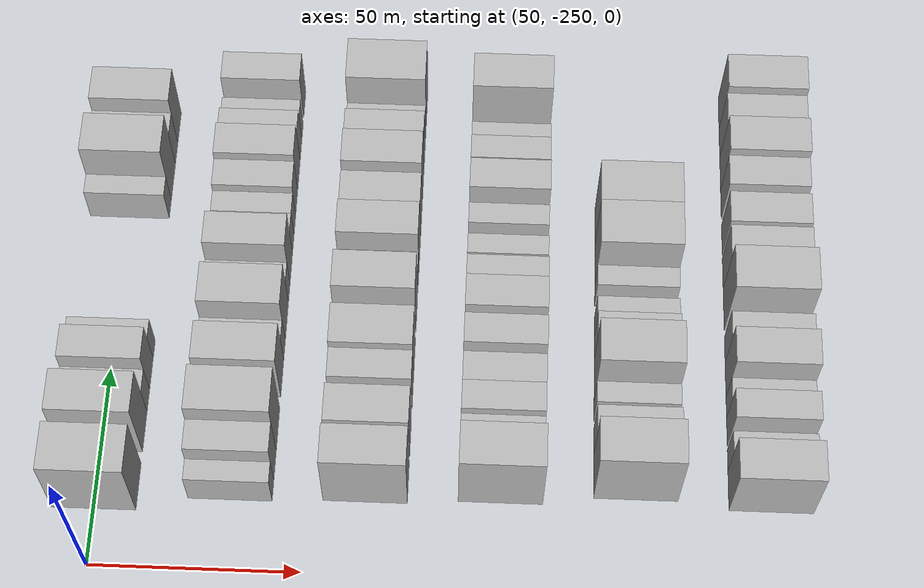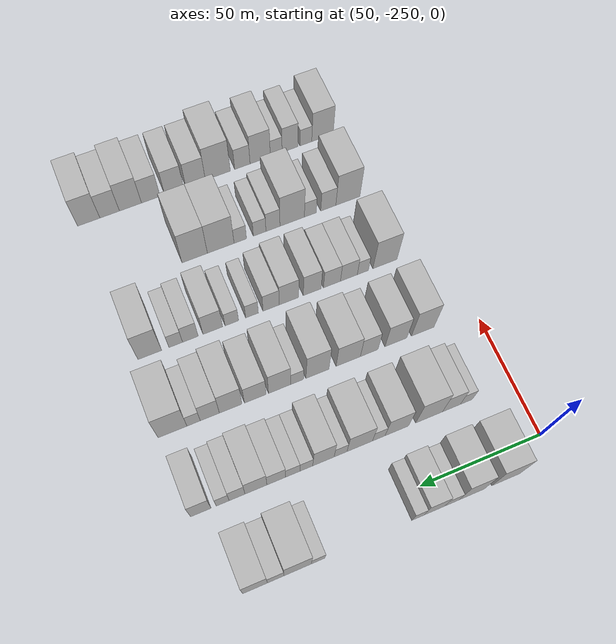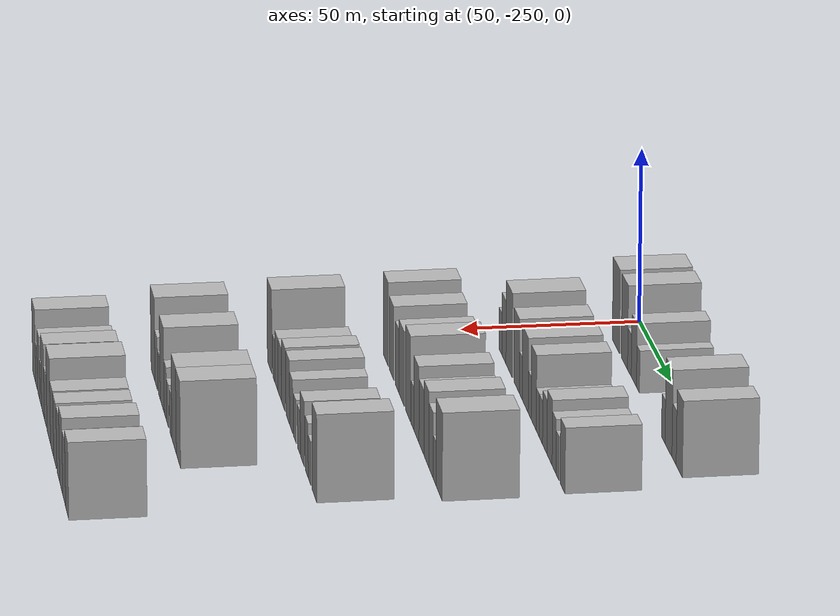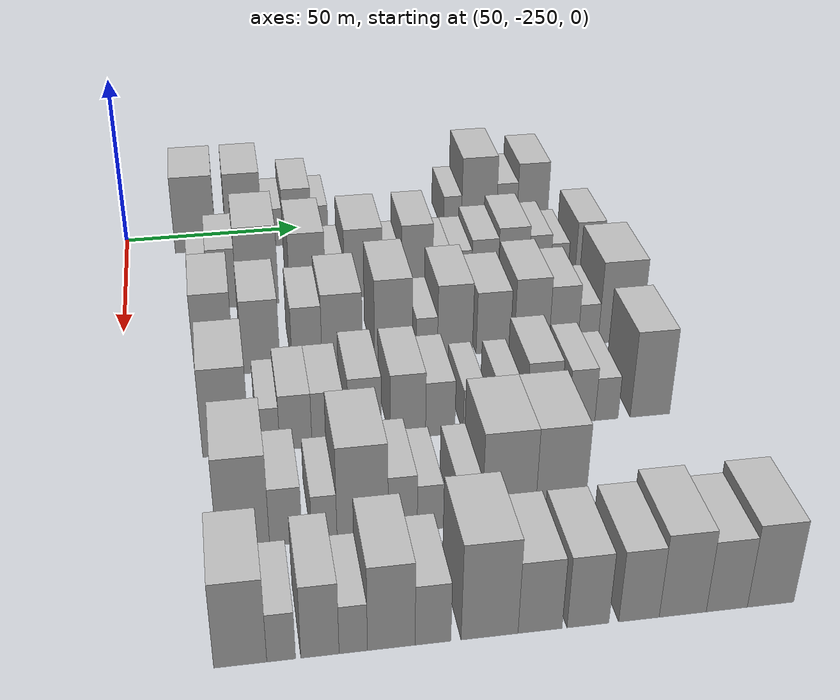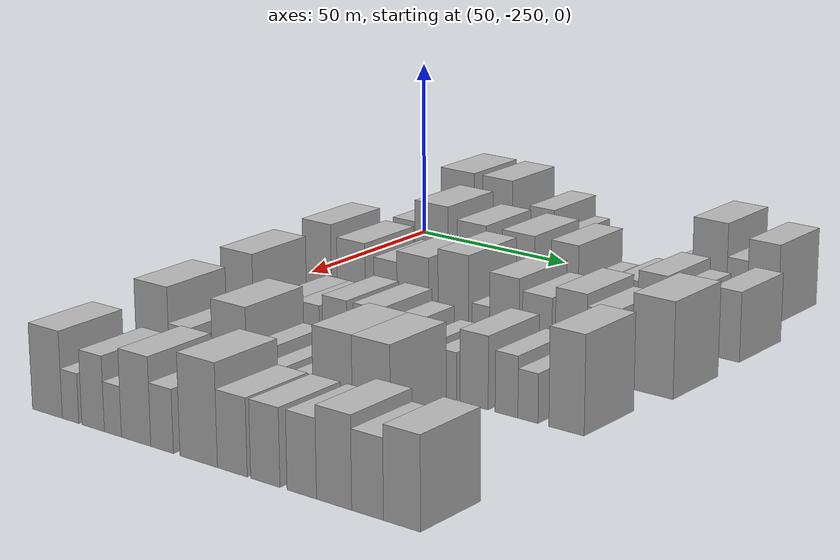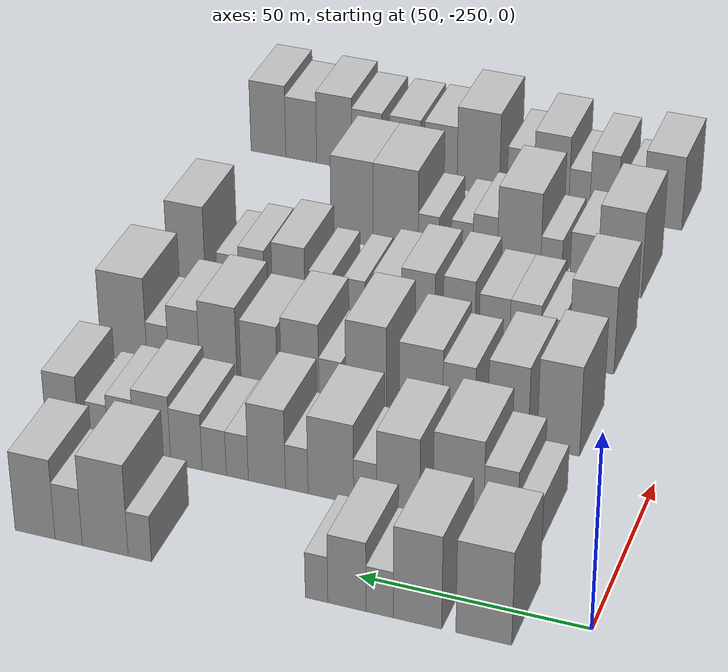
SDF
<sdf version="1.6">
 <world name="default">
  <model name="building_34">
   <static>1</static>
   <pose>50.0000 -230.2196 0 0.000000 0.000000 0.000000</pose>
   <link name="link">
    <pose>0 0 12.00 0 0 0</pose>
    <collision name="collision"><geometry><box><size>20.0000 11.7965 24.0000</size></box></geometry></collision>
    <visual name="visual">
     <cast_shadows>0</cast_shadows>
     <geometry><box><size>20.0000 11.7965 24.0000</size></box></geometry>
     <material>
      <script>
       <uri>model://HANNAS_wall/materials/scripts</uri>
       <uri>model://HANNAS_wall/materials/textures</uri>
       <name>vrc/HANNAS_wall</name>
      </script>
     </material>
    </visual>
   </link>
  </model>
  <model name="building_35">
   <static>1</static>
   <pose>50.0000 -216.1596 0 0.000000 0.000000 0.000000</pose>
   <link name="link">
    <pose>0 0 12.00 0 0 0</pose>
    <collision name="collision"><geometry><box><size>20.0000 10.3236 24.0000</size></box></geometry></collision>
    <visual name="visual">
     <cast_shadows>0</cast_shadows>
     <geometry><box><size>20.0000 10.3236 24.0000</size></box></geometry>
     <material>
      <script>
       <uri>model://HANNAS_wall/materials/scripts</uri>
       <uri>model://HANNAS_wall/materials/textures</uri>
       <name>vrc/HANNAS_wall</name>
      </script>
     </material>
    </visual>
   </link>
  </model>
  <model name="building_36">
   <static>1</static>
   <pose>50.0000 -208.0337 0 0.000000 0.000000 0.000000</pose>
   <link name="link">
    <pose>0 0 6.00 0 0 0</pose>
    <collision name="collision"><geometry><box><size>20.0000 5.9284 12.0000</size></box></geometry></collision>
    <visual name="visual">
     <cast_shadows>0</cast_shadows>
     <geometry><box><size>20.0000 5.9284 12.0000</size></box></geometry>
     <material>
      <script>
       <uri>model://HANNAS_wall/materials/scripts</uri>
       <uri>model://HANNAS_wall/materials/textures</uri>
       <name>vrc/HANNAS_wall</name>
      </script>
     </material>
    </visual>
   </link>
  </model>
  <model name="building_37">
   <static>1</static>
   <pose>50.0000 -200.9124 0 0.000000 0.000000 0.000000</pose>
   <link name="link">
    <pose>0 0 9.00 0 0 0</pose>
    <collision name="collision"><geometry><box><size>20.0000 8.3141 18.0000</size></box></geometry></collision>
    <visual name="visual">
     <cast_shadows>0</cast_shadows>
     <geometry><box><size>20.0000 8.3141 18.0000</size></box></geometry>
     <material>
      <script>
       <uri>model://HANNAS_wall/materials/scripts</uri>
       <uri>model://HANNAS_wall/materials/textures</uri>
       <name>vrc/HANNAS_wall</name>
      </script>
     </material>
    </visual>
   </link>
  </model>
  <model name="building_38">
   <static>1</static>
   <pose>50.0000 -194.2948 0 0.000000 0.000000 0.000000</pose>
   <link name="link">
    <pose>0 0 6.00 0 0 0</pose>
    <collision name="collision"><geometry><box><size>20.0000 4.9212 12.0000</size></box></geometry></collision>
    <visual name="visual">
     <cast_shadows>0</cast_shadows>
     <geometry><box><size>20.0000 4.9212 12.0000</size></box></geometry>
     <material>
      <script>
       <uri>model://HANNAS_wall/materials/scripts</uri>
       <uri>model://HANNAS_wall/materials/textures</uri>
       <name>vrc/HANNAS_wall</name>
      </script>
     </material>
    </visual>
   </link>
  </model>
  <model name="building_39">
   <static>1</static>
   <pose>50.0000 -154.8706 0 0.000000 0.000000 0.000000</pose>
   <link name="link">
    <pose>0 0 6.00 0 0 0</pose>
    <collision name="collision"><geometry><box><size>20.0000 5.3091 12.0000</size></box></geometry></collision>
    <visual name="visual">
     <cast_shadows>0</cast_shadows>
     <geometry><box><size>20.0000 5.3091 12.0000</size></box></geometry>
     <material>
      <script>
       <uri>model://HANNAS_wall/materials/scripts</uri>
       <uri>model://HANNAS_wall/materials/textures</uri>
       <name>vrc/HANNAS_wall</name>
      </script>
     </material>
    </visual>
   </link>
  </model>
  <model name="building_40">
   <static>1</static>
   <pose>50.0000 -146.9574 0 0.000000 0.000000 0.000000</pose>
   <link name="link">
    <pose>0 0 12.00 0 0 0</pose>
    <collision name="collision"><geometry><box><size>20.0000 10.5174 24.0000</size></box></geometry></collision>
    <visual name="visual">
     <cast_shadows>0</cast_shadows>
     <geometry><box><size>20.0000 10.5174 24.0000</size></box></geometry>
     <material>
      <script>
       <uri>model://HANNAS_wall/materials/scripts</uri>
       <uri>model://HANNAS_wall/materials/textures</uri>
       <name>vrc/HANNAS_wall</name>
      </script>
     </material>
    </visual>
   </link>
  </model>
  <model name="building_41">
   <static>1</static>
   <pose>50.0000 -138.5620 0 0.000000 0.000000 0.000000</pose>
   <link name="link">
    <pose>0 0 7.50 0 0 0</pose>
    <collision name="collision"><geometry><box><size>20.0000 6.2733 15.0000</size></box></geometry></collision>
    <visual name="visual">
     <cast_shadows>0</cast_shadows>
     <geometry><box><size>20.0000 6.2733 15.0000</size></box></geometry>
     <material>
      <script>
       <uri>model://HANNAS_wall/materials/scripts</uri>
       <uri>model://HANNAS_wall/materials/textures</uri>
       <name>vrc/HANNAS_wall</name>
      </script>
     </material>
    </visual>
   </link>
  </model>
  <model name="building_42">
   <static>1</static>
   <pose>50.0000 -130.7770 0 0.000000 0.000000 0.000000</pose>
   <link name="link">
    <pose>0 0 10.50 0 0 0</pose>
    <collision name="collision"><geometry><box><size>20.0000 9.2967 21.0000</size></box></geometry></collision>
    <visual name="visual">
     <cast_shadows>0</cast_shadows>
     <geometry><box><size>20.0000 9.2967 21.0000</size></box></geometry>
     <material>
      <script>
       <uri>model://HANNAS_wall/materials/scripts</uri>
       <uri>model://HANNAS_wall/materials/textures</uri>
       <name>vrc/HANNAS_wall</name>
      </script>
     </material>
    </visual>
   </link>
  </model>
  <model name="building_148">
   <static>1</static>
   <pose>82.0000 -230.0540 0 0.000000 0.000000 0.000000</pose>
   <link name="link">
    <pose>0 0 6.00 0 0 0</pose>
    <collision name="collision"><geometry><box><size>20.0000 5.1873 12.0000</size></box></geometry></collision>
    <visual name="visual">
     <cast_shadows>0</cast_shadows>
     <geometry><box><size>20.0000 5.1873 12.0000</size></box></geometry>
     <material>
      <script>
       <uri>model://HANNAS_wall/materials/scripts</uri>
       <uri>model://HANNAS_wall/materials/textures</uri>
       <name>vrc/HANNAS_wall</name>
      </script>
     </material>
    </visual>
   </link>
  </model>
  <model name="building_149">
   <static>1</static>
   <pose>82.0000 -223.7121 0 0.000000 0.000000 0.000000</pose>
   <link name="link">
    <pose>0 0 9.00 0 0 0</pose>
    <collision name="collision"><geometry><box><size>20.0000 7.4964 18.0000</size></box></geometry></collision>
    <visual name="visual">
     <cast_shadows>0</cast_shadows>
     <geometry><box><size>20.0000 7.4964 18.0000</size></box></geometry>
     <material>
      <script>
       <uri>model://HANNAS_wall/materials/scripts</uri>
       <uri>model://HANNAS_wall/materials/textures</uri>
       <name>vrc/HANNAS_wall</name>
      </script>
     </material>
    </visual>
   </link>
  </model>
  <model name="building_150">
   <static>1</static>
   <pose>82.0000 -214.3431 0 0.000000 0.000000 0.000000</pose>
   <link name="link">
    <pose>0 0 12.00 0 0 0</pose>
    <collision name="collision"><geometry><box><size>20.0000 11.2416 24.0000</size></box></geometry></collision>
    <visual name="visual">
     <cast_shadows>0</cast_shadows>
     <geometry><box><size>20.0000 11.2416 24.0000</size></box></geometry>
     <material>
      <script>
       <uri>model://HANNAS_wall/materials/scripts</uri>
       <uri>model://HANNAS_wall/materials/textures</uri>
       <name>vrc/HANNAS_wall</name>
      </script>
     </material>
    </visual>
   </link>
  </model>
  <model name="building_151">
   <static>1</static>
   <pose>82.0000 -200.8502 0 0.000000 0.000000 0.000000</pose>
   <link name="link">
    <pose>0 0 10.50 0 0 0</pose>
    <collision name="collision"><geometry><box><size>20.0000 9.7442 21.0000</size></box></geometry></collision>
    <visual name="visual">
     <cast_shadows>0</cast_shadows>
     <geometry><box><size>20.0000 9.7442 21.0000</size></box></geometry>
     <material>
      <script>
       <uri>model://HANNAS_wall/materials/scripts</uri>
       <uri>model://HANNAS_wall/materials/textures</uri>
       <name>vrc/HANNAS_wall</name>
      </script>
     </material>
    </visual>
   </link>
  </model>
  <model name="building_152">
   <static>1</static>
   <pose>82.0000 -193.3822 0 0.000000 0.000000 0.000000</pose>
   <link name="link">
    <pose>0 0 6.00 0 0 0</pose>
    <collision name="collision"><geometry><box><size>20.0000 5.1919 12.0000</size></box></geometry></collision>
    <visual name="visual">
     <cast_shadows>0</cast_shadows>
     <geometry><box><size>20.0000 5.1919 12.0000</size></box></geometry>
     <material>
      <script>
       <uri>model://HANNAS_wall/materials/scripts</uri>
       <uri>model://HANNAS_wall/materials/textures</uri>
       <name>vrc/HANNAS_wall</name>
      </script>
     </material>
    </visual>
   </link>
  </model>
  <model name="building_153">
   <static>1</static>
   <pose>82.0000 -185.5626 0 0.000000 0.000000 0.000000</pose>
   <link name="link">
    <pose>0 0 10.50 0 0 0</pose>
    <collision name="collision"><geometry><box><size>20.0000 10.4474 21.0000</size></box></geometry></collision>
    <visual name="visual">
     <cast_shadows>0</cast_shadows>
     <geometry><box><size>20.0000 10.4474 21.0000</size></box></geometry>
     <material>
      <script>
       <uri>model://HANNAS_wall/materials/scripts</uri>
       <uri>model://HANNAS_wall/materials/textures</uri>
       <name>vrc/HANNAS_wall</name>
      </script>
     </material>
    </visual>
   </link>
  </model>
  <model name="building_154">
   <static>1</static>
   <pose>82.0000 -177.7225 0 0.000000 0.000000 0.000000</pose>
   <link name="link">
    <pose>0 0 6.00 0 0 0</pose>
    <collision name="collision"><geometry><box><size>20.0000 5.2328 12.0000</size></box></geometry></collision>
    <visual name="visual">
     <cast_shadows>0</cast_shadows>
     <geometry><box><size>20.0000 5.2328 12.0000</size></box></geometry>
     <material>
      <script>
       <uri>model://HANNAS_wall/materials/scripts</uri>
       <uri>model://HANNAS_wall/materials/textures</uri>
       <name>vrc/HANNAS_wall</name>
      </script>
     </material>
    </visual>
   </link>
  </model>
  <model name="building_155">
   <static>1</static>
   <pose>82.0000 -170.7896 0 0.000000 0.000000 0.000000</pose>
   <link name="link">
    <pose>0 0 10.50 0 0 0</pose>
    <collision name="collision"><geometry><box><size>20.0000 8.6328 21.0000</size></box></geometry></collision>
    <visual name="visual">
     <cast_shadows>0</cast_shadows>
     <geometry><box><size>20.0000 8.6328 21.0000</size></box></geometry>
     <material>
      <script>
       <uri>model://HANNAS_wall/materials/scripts</uri>
       <uri>model://HANNAS_wall/materials/textures</uri>
       <name>vrc/HANNAS_wall</name>
      </script>
     </material>
    </visual>
   </link>
  </model>
  <model name="building_156">
   <static>1</static>
   <pose>82.0000 -163.9092 0 0.000000 0.000000 0.000000</pose>
   <link name="link">
    <pose>0 0 6.00 0 0 0</pose>
    <collision name="collision"><geometry><box><size>20.0000 5.1281 12.0000</size></box></geometry></collision>
    <visual name="visual">
     <cast_shadows>0</cast_shadows>
     <geometry><box><size>20.0000 5.1281 12.0000</size></box></geometry>
     <material>
      <script>
       <uri>model://HANNAS_wall/materials/scripts</uri>
       <uri>model://HANNAS_wall/materials/textures</uri>
       <name>vrc/HANNAS_wall</name>
      </script>
     </material>
    </visual>
   </link>
  </model>
  <model name="building_157">
   <static>1</static>
   <pose>82.0000 -158.4961 0 0.000000 0.000000 0.000000</pose>
   <link name="link">
    <pose>0 0 6.00 0 0 0</pose>
    <collision name="collision"><geometry><box><size>20.0000 5.6981 12.0000</size></box></geometry></collision>
    <visual name="visual">
     <cast_shadows>0</cast_shadows>
     <geometry><box><size>20.0000 5.6981 12.0000</size></box></geometry>
     <material>
      <script>
       <uri>model://HANNAS_wall/materials/scripts</uri>
       <uri>model://HANNAS_wall/materials/textures</uri>
       <name>vrc/HANNAS_wall</name>
      </script>
     </material>
    </visual>
   </link>
  </model>
  <model name="building_158">
   <static>1</static>
   <pose>82.0000 -151.9312 0 0.000000 0.000000 0.000000</pose>
   <link name="link">
    <pose>0 0 7.50 0 0 0</pose>
    <collision name="collision"><geometry><box><size>20.0000 7.4318 15.0000</size></box></geometry></collision>
    <visual name="visual">
     <cast_shadows>0</cast_shadows>
     <geometry><box><size>20.0000 7.4318 15.0000</size></box></geometry>
     <material>
      <script>
       <uri>model://HANNAS_wall/materials/scripts</uri>
       <uri>model://HANNAS_wall/materials/textures</uri>
       <name>vrc/HANNAS_wall</name>
      </script>
     </material>
    </visual>
   </link>
  </model>
  <model name="building_159">
   <static>1</static>
   <pose>82.0000 -143.8930 0 0.000000 0.000000 0.000000</pose>
   <link name="link">
    <pose>0 0 9.00 0 0 0</pose>
    <collision name="collision"><geometry><box><size>20.0000 8.6445 18.0000</size></box></geometry></collision>
    <visual name="visual">
     <cast_shadows>0</cast_shadows>
     <geometry><box><size>20.0000 8.6445 18.0000</size></box></geometry>
     <material>
      <script>
       <uri>model://HANNAS_wall/materials/scripts</uri>
       <uri>model://HANNAS_wall/materials/textures</uri>
       <name>vrc/HANNAS_wall</name>
      </script>
     </material>
    </visual>
   </link>
  </model>
  <model name="building_160">
   <static>1</static>
   <pose>82.0000 -136.4608 0 0.000000 0.000000 0.000000</pose>
   <link name="link">
    <pose>0 0 7.50 0 0 0</pose>
    <collision name="collision"><geometry><box><size>20.0000 6.2200 15.0000</size></box></geometry></collision>
    <visual name="visual">
     <cast_shadows>0</cast_shadows>
     <geometry><box><size>20.0000 6.2200 15.0000</size></box></geometry>
     <material>
      <script>
       <uri>model://HANNAS_wall/materials/scripts</uri>
       <uri>model://HANNAS_wall/materials/textures</uri>
       <name>vrc/HANNAS_wall</name>
      </script>
     </material>
    </visual>
   </link>
  </model>
  <model name="building_161">
   <static>1</static>
   <pose>82.0000 -130.8291 0 0.000000 0.000000 0.000000</pose>
   <link name="link">
    <pose>0 0 6.00 0 0 0</pose>
    <collision name="collision"><geometry><box><size>20.0000 5.0434 12.0000</size></box></geometry></collision>
    <visual name="visual">
     <cast_shadows>0</cast_shadows>
     <geometry><box><size>20.0000 5.0434 12.0000</size></box></geometry>
     <material>
      <script>
       <uri>model://HANNAS_wall/materials/scripts</uri>
       <uri>model://HANNAS_wall/materials/textures</uri>
       <name>vrc/HANNAS_wall</name>
      </script>
     </material>
    </visual>
   </link>
  </model>
  <model name="building_162">
   <static>1</static>
   <pose>82.0000 -122.3464 0 0.000000 0.000000 0.000000</pose>
   <link name="link">
    <pose>0 0 9.00 0 0 0</pose>
    <collision name="collision"><geometry><box><size>20.0000 7.9219 18.0000</size></box></geometry></collision>
    <visual name="visual">
     <cast_shadows>0</cast_shadows>
     <geometry><box><size>20.0000 7.9219 18.0000</size></box></geometry>
     <material>
      <script>
       <uri>model://HANNAS_wall/materials/scripts</uri>
       <uri>model://HANNAS_wall/materials/textures</uri>
       <name>vrc/HANNAS_wall</name>
      </script>
     </material>
    </visual>
   </link>
  </model>
  <model name="building_275">
   <static>1</static>
   <pose>114.0000 -227.0773 0 0.000000 0.000000 0.000000</pose>
   <link name="link">
    <pose>0 0 12.00 0 0 0</pose>
    <collision name="collision"><geometry><box><size>20.0000 9.7716 24.0000</size></box></geometry></collision>
    <visual name="visual">
     <cast_shadows>0</cast_shadows>
     <geometry><box><size>20.0000 9.7716 24.0000</size></box></geometry>
     <material>
      <script>
       <uri>model://HANNAS_wall/materials/scripts</uri>
       <uri>model://HANNAS_wall/materials/textures</uri>
       <name>vrc/HANNAS_wall</name>
      </script>
     </material>
    </visual>
   </link>
  </model>
  <model name="building_276">
   <static>1</static>
   <pose>114.0000 -215.4870 0 0.000000 0.000000 0.000000</pose>
   <link name="link">
    <pose>0 0 10.50 0 0 0</pose>
    <collision name="collision"><geometry><box><size>20.0000 9.4090 21.0000</size></box></geometry></collision>
    <visual name="visual">
     <cast_shadows>0</cast_shadows>
     <geometry><box><size>20.0000 9.4090 21.0000</size></box></geometry>
     <material>
      <script>
       <uri>model://HANNAS_wall/materials/scripts</uri>
       <uri>model://HANNAS_wall/materials/textures</uri>
       <name>vrc/HANNAS_wall</name>
      </script>
     </material>
    </visual>
   </link>
  </model>
  <model name="building_277">
   <static>1</static>
   <pose>114.0000 -204.0106 0 0.000000 0.000000 0.000000</pose>
   <link name="link">
    <pose>0 0 9.00 0 0 0</pose>
    <collision name="collision"><geometry><box><size>20.0000 7.5439 18.0000</size></box></geometry></collision>
    <visual name="visual">
     <cast_shadows>0</cast_shadows>
     <geometry><box><size>20.0000 7.5439 18.0000</size></box></geometry>
     <material>
      <script>
       <uri>model://HANNAS_wall/materials/scripts</uri>
       <uri>model://HANNAS_wall/materials/textures</uri>
       <name>vrc/HANNAS_wall</name>
      </script>
     </material>
    </visual>
   </link>
  </model>
  <model name="building_278">
   <static>1</static>
   <pose>114.0000 -195.1094 0 0.000000 0.000000 0.000000</pose>
   <link name="link">
    <pose>0 0 10.50 0 0 0</pose>
    <collision name="collision"><geometry><box><size>20.0000 10.2586 21.0000</size></box></geometry></collision>
    <visual name="visual">
     <cast_shadows>0</cast_shadows>
     <geometry><box><size>20.0000 10.2586 21.0000</size></box></geometry>
     <material>
      <script>
       <uri>model://HANNAS_wall/materials/scripts</uri>
       <uri>model://HANNAS_wall/materials/textures</uri>
       <name>vrc/HANNAS_wall</name>
      </script>
     </material>
    </visual>
   </link>
  </model>
  <model name="building_279">
   <static>1</static>
   <pose>114.0000 -182.1503 0 0.000000 0.000000 0.000000</pose>
   <link name="link">
    <pose>0 0 12.00 0 0 0</pose>
    <collision name="collision"><geometry><box><size>20.0000 9.6596 24.0000</size></box></geometry></collision>
    <visual name="visual">
     <cast_shadows>0</cast_shadows>
     <geometry><box><size>20.0000 9.6596 24.0000</size></box></geometry>
     <material>
      <script>
       <uri>model://HANNAS_wall/materials/scripts</uri>
       <uri>model://HANNAS_wall/materials/textures</uri>
       <name>vrc/HANNAS_wall</name>
      </script>
     </material>
    </visual>
   </link>
  </model>
  <model name="building_280">
   <static>1</static>
   <pose>114.0000 -173.5995 0 0.000000 0.000000 0.000000</pose>
   <link name="link">
    <pose>0 0 6.00 0 0 0</pose>
    <collision name="collision"><geometry><box><size>20.0000 5.4420 12.0000</size></box></geometry></collision>
    <visual name="visual">
     <cast_shadows>0</cast_shadows>
     <geometry><box><size>20.0000 5.4420 12.0000</size></box></geometry>
     <material>
      <script>
       <uri>model://HANNAS_wall/materials/scripts</uri>
       <uri>model://HANNAS_wall/materials/textures</uri>
       <name>vrc/HANNAS_wall</name>
      </script>
     </material>
    </visual>
   </link>
  </model>
  <model name="building_281">
   <static>1</static>
   <pose>114.0000 -166.3547 0 0.000000 0.000000 0.000000</pose>
   <link name="link">
    <pose>0 0 10.50 0 0 0</pose>
    <collision name="collision"><geometry><box><size>20.0000 9.0476 21.0000</size></box></geometry></collision>
    <visual name="visual">
     <cast_shadows>0</cast_shadows>
     <geometry><box><size>20.0000 9.0476 21.0000</size></box></geometry>
     <material>
      <script>
       <uri>model://HANNAS_wall/materials/scripts</uri>
       <uri>model://HANNAS_wall/materials/textures</uri>
       <name>vrc/HANNAS_wall</name>
      </script>
     </material>
    </visual>
   </link>
  </model>
  <model name="building_282">
   <static>1</static>
   <pose>114.0000 -156.4036 0 0.000000 0.000000 0.000000</pose>
   <link name="link">
    <pose>0 0 9.00 0 0 0</pose>
    <collision name="collision"><geometry><box><size>20.0000 8.8547 18.0000</size></box></geometry></collision>
    <visual name="visual">
     <cast_shadows>0</cast_shadows>
     <geometry><box><size>20.0000 8.8547 18.0000</size></box></geometry>
     <material>
      <script>
       <uri>model://HANNAS_wall/materials/scripts</uri>
       <uri>model://HANNAS_wall/materials/textures</uri>
       <name>vrc/HANNAS_wall</name>
      </script>
     </material>
    </visual>
   </link>
  </model>
  <model name="building_283">
   <static>1</static>
   <pose>114.0000 -146.3846 0 0.000000 0.000000 0.000000</pose>
   <link name="link">
    <pose>0 0 10.50 0 0 0</pose>
    <collision name="collision"><geometry><box><size>20.0000 9.1833 21.0000</size></box></geometry></collision>
    <visual name="visual">
     <cast_shadows>0</cast_shadows>
     <geometry><box><size>20.0000 9.1833 21.0000</size></box></geometry>
     <material>
      <script>
       <uri>model://HANNAS_wall/materials/scripts</uri>
       <uri>model://HANNAS_wall/materials/textures</uri>
       <name>vrc/HANNAS_wall</name>
      </script>
     </material>
    </visual>
   </link>
  </model>
  <model name="building_284">
   <static>1</static>
   <pose>114.0000 -137.9410 0 0.000000 0.000000 0.000000</pose>
   <link name="link">
    <pose>0 0 9.00 0 0 0</pose>
    <collision name="collision"><geometry><box><size>20.0000 7.7040 18.0000</size></box></geometry></collision>
    <visual name="visual">
     <cast_shadows>0</cast_shadows>
     <geometry><box><size>20.0000 7.7040 18.0000</size></box></geometry>
     <material>
      <script>
       <uri>model://HANNAS_wall/materials/scripts</uri>
       <uri>model://HANNAS_wall/materials/textures</uri>
       <name>vrc/HANNAS_wall</name>
      </script>
     </material>
    </visual>
   </link>
  </model>
  <model name="building_285">
   <static>1</static>
   <pose>114.0000 -131.4116 0 0.000000 0.000000 0.000000</pose>
   <link name="link">
    <pose>0 0 6.00 0 0 0</pose>
    <collision name="collision"><geometry><box><size>20.0000 5.3548 12.0000</size></box></geometry></collision>
    <visual name="visual">
     <cast_shadows>0</cast_shadows>
     <geometry><box><size>20.0000 5.3548 12.0000</size></box></geometry>
     <material>
      <script>
       <uri>model://HANNAS_wall/materials/scripts</uri>
       <uri>model://HANNAS_wall/materials/textures</uri>
       <name>vrc/HANNAS_wall</name>
      </script>
     </material>
    </visual>
   </link>
  </model>
  <model name="building_286">
   <static>1</static>
   <pose>114.0000 -122.9636 0 0.000000 0.000000 0.000000</pose>
   <link name="link">
    <pose>0 0 12.00 0 0 0</pose>
    <collision name="collision"><geometry><box><size>20.0000 11.5412 24.0000</size></box></geometry></collision>
    <visual name="visual">
     <cast_shadows>0</cast_shadows>
     <geometry><box><size>20.0000 11.5412 24.0000</size></box></geometry>
     <material>
      <script>
       <uri>model://HANNAS_wall/materials/scripts</uri>
       <uri>model://HANNAS_wall/materials/textures</uri>
       <name>vrc/HANNAS_wall</name>
      </script>
     </material>
    </visual>
   </link>
  </model>
  <model name="building_393">
   <static>1</static>
   <pose>146.0000 -225.6007 0 0.000000 0.000000 0.000000</pose>
   <link name="link">
    <pose>0 0 12.00 0 0 0</pose>
    <collision name="collision"><geometry><box><size>20.0000 10.7012 24.0000</size></box></geometry></collision>
    <visual name="visual">
     <cast_shadows>0</cast_shadows>
     <geometry><box><size>20.0000 10.7012 24.0000</size></box></geometry>
     <material>
      <script>
       <uri>model://HANNAS_wall/materials/scripts</uri>
       <uri>model://HANNAS_wall/materials/textures</uri>
       <name>vrc/HANNAS_wall</name>
      </script>
     </material>
    </visual>
   </link>
  </model>
  <model name="building_394">
   <static>1</static>
   <pose>146.0000 -215.8048 0 0.000000 0.000000 0.000000</pose>
   <link name="link">
    <pose>0 0 6.00 0 0 0</pose>
    <collision name="collision"><geometry><box><size>20.0000 4.8906 12.0000</size></box></geometry></collision>
    <visual name="visual">
     <cast_shadows>0</cast_shadows>
     <geometry><box><size>20.0000 4.8906 12.0000</size></box></geometry>
     <material>
      <script>
       <uri>model://HANNAS_wall/materials/scripts</uri>
       <uri>model://HANNAS_wall/materials/textures</uri>
       <name>vrc/HANNAS_wall</name>
      </script>
     </material>
    </visual>
   </link>
  </model>
  <model name="building_395">
   <static>1</static>
   <pose>146.0000 -209.6543 0 0.000000 0.000000 0.000000</pose>
   <link name="link">
    <pose>0 0 7.50 0 0 0</pose>
    <collision name="collision"><geometry><box><size>20.0000 7.4105 15.0000</size></box></geometry></collision>
    <visual name="visual">
     <cast_shadows>0</cast_shadows>
     <geometry><box><size>20.0000 7.4105 15.0000</size></box></geometry>
     <material>
      <script>
       <uri>model://HANNAS_wall/materials/scripts</uri>
       <uri>model://HANNAS_wall/materials/textures</uri>
       <name>vrc/HANNAS_wall</name>
      </script>
     </material>
    </visual>
   </link>
  </model>
  <model name="building_396">
   <static>1</static>
   <pose>146.0000 -202.2300 0 0.000000 0.000000 0.000000</pose>
   <link name="link">
    <pose>0 0 7.50 0 0 0</pose>
    <collision name="collision"><geometry><box><size>20.0000 7.4380 15.0000</size></box></geometry></collision>
    <visual name="visual">
     <cast_shadows>0</cast_shadows>
     <geometry><box><size>20.0000 7.4380 15.0000</size></box></geometry>
     <material>
      <script>
       <uri>model://HANNAS_wall/materials/scripts</uri>
       <uri>model://HANNAS_wall/materials/textures</uri>
       <name>vrc/HANNAS_wall</name>
      </script>
     </material>
    </visual>
   </link>
  </model>
  <model name="building_397">
   <static>1</static>
   <pose>146.0000 -193.6301 0 0.000000 0.000000 0.000000</pose>
   <link name="link">
    <pose>0 0 9.00 0 0 0</pose>
    <collision name="collision"><geometry><box><size>20.0000 7.7619 18.0000</size></box></geometry></collision>
    <visual name="visual">
     <cast_shadows>0</cast_shadows>
     <geometry><box><size>20.0000 7.7619 18.0000</size></box></geometry>
     <material>
      <script>
       <uri>model://HANNAS_wall/materials/scripts</uri>
       <uri>model://HANNAS_wall/materials/textures</uri>
       <name>vrc/HANNAS_wall</name>
      </script>
     </material>
    </visual>
   </link>
  </model>
  <model name="building_398">
   <static>1</static>
   <pose>146.0000 -183.5803 0 0.000000 0.000000 0.000000</pose>
   <link name="link">
    <pose>0 0 9.00 0 0 0</pose>
    <collision name="collision"><geometry><box><size>20.0000 8.3376 18.0000</size></box></geometry></collision>
    <visual name="visual">
     <cast_shadows>0</cast_shadows>
     <geometry><box><size>20.0000 8.3376 18.0000</size></box></geometry>
     <material>
      <script>
       <uri>model://HANNAS_wall/materials/scripts</uri>
       <uri>model://HANNAS_wall/materials/textures</uri>
       <name>vrc/HANNAS_wall</name>
      </script>
     </material>
    </visual>
   </link>
  </model>
  <model name="building_399">
   <static>1</static>
   <pose>146.0000 -175.9541 0 0.000000 0.000000 0.000000</pose>
   <link name="link">
    <pose>0 0 7.50 0 0 0</pose>
    <collision name="collision"><geometry><box><size>20.0000 6.9147 15.0000</size></box></geometry></collision>
    <visual name="visual">
     <cast_shadows>0</cast_shadows>
     <geometry><box><size>20.0000 6.9147 15.0000</size></box></geometry>
     <material>
      <script>
       <uri>model://HANNAS_wall/materials/scripts</uri>
       <uri>model://HANNAS_wall/materials/textures</uri>
       <name>vrc/HANNAS_wall</name>
      </script>
     </material>
    </visual>
   </link>
  </model>
  <model name="building_400">
   <static>1</static>
   <pose>146.0000 -167.8080 0 0.000000 0.000000 0.000000</pose>
   <link name="link">
    <pose>0 0 6.00 0 0 0</pose>
    <collision name="collision"><geometry><box><size>20.0000 5.3776 12.0000</size></box></geometry></collision>
    <visual name="visual">
     <cast_shadows>0</cast_shadows>
     <geometry><box><size>20.0000 5.3776 12.0000</size></box></geometry>
     <material>
      <script>
       <uri>model://HANNAS_wall/materials/scripts</uri>
       <uri>model://HANNAS_wall/materials/textures</uri>
       <name>vrc/HANNAS_wall</name>
      </script>
     </material>
    </visual>
   </link>
  </model>
  <model name="building_401">
   <static>1</static>
   <pose>146.0000 -159.2641 0 0.000000 0.000000 0.000000</pose>
   <link name="link">
    <pose>0 0 6.00 0 0 0</pose>
    <collision name="collision"><geometry><box><size>20.0000 5.7102 12.0000</size></box></geometry></collision>
    <visual name="visual">
     <cast_shadows>0</cast_shadows>
     <geometry><box><size>20.0000 5.7102 12.0000</size></box></geometry>
     <material>
      <script>
       <uri>model://HANNAS_wall/materials/scripts</uri>
       <uri>model://HANNAS_wall/materials/textures</uri>
       <name>vrc/HANNAS_wall</name>
      </script>
     </material>
    </visual>
   </link>
  </model>
  <model name="building_402">
   <static>1</static>
   <pose>146.0000 -151.2862 0 0.000000 0.000000 0.000000</pose>
   <link name="link">
    <pose>0 0 9.00 0 0 0</pose>
    <collision name="collision"><geometry><box><size>20.0000 8.2455 18.0000</size></box></geometry></collision>
    <visual name="visual">
     <cast_shadows>0</cast_shadows>
     <geometry><box><size>20.0000 8.2455 18.0000</size></box></geometry>
     <material>
      <script>
       <uri>model://HANNAS_wall/materials/scripts</uri>
       <uri>model://HANNAS_wall/materials/textures</uri>
       <name>vrc/HANNAS_wall</name>
      </script>
     </material>
    </visual>
   </link>
  </model>
  <model name="building_403">
   <static>1</static>
   <pose>146.0000 -141.9185 0 0.000000 0.000000 0.000000</pose>
   <link name="link">
    <pose>0 0 7.50 0 0 0</pose>
    <collision name="collision"><geometry><box><size>20.0000 6.4899 15.0000</size></box></geometry></collision>
    <visual name="visual">
     <cast_shadows>0</cast_shadows>
     <geometry><box><size>20.0000 6.4899 15.0000</size></box></geometry>
     <material>
      <script>
       <uri>model://HANNAS_wall/materials/scripts</uri>
       <uri>model://HANNAS_wall/materials/textures</uri>
       <name>vrc/HANNAS_wall</name>
      </script>
     </material>
    </visual>
   </link>
  </model>
  <model name="building_404">
   <static>1</static>
   <pose>146.0000 -135.8413 0 0.000000 0.000000 0.000000</pose>
   <link name="link">
    <pose>0 0 6.00 0 0 0</pose>
    <collision name="collision"><geometry><box><size>20.0000 5.6645 12.0000</size></box></geometry></collision>
    <visual name="visual">
     <cast_shadows>0</cast_shadows>
     <geometry><box><size>20.0000 5.6645 12.0000</size></box></geometry>
     <material>
      <script>
       <uri>model://HANNAS_wall/materials/scripts</uri>
       <uri>model://HANNAS_wall/materials/textures</uri>
       <name>vrc/HANNAS_wall</name>
      </script>
     </material>
    </visual>
   </link>
  </model>
  <model name="building_405">
   <static>1</static>
   <pose>146.0000 -125.1400 0 0.000000 0.000000 0.000000</pose>
   <link name="link">
    <pose>0 0 12.00 0 0 0</pose>
    <collision name="collision"><geometry><box><size>20.0000 9.7381 24.0000</size></box></geometry></collision>
    <visual name="visual">
     <cast_shadows>0</cast_shadows>
     <geometry><box><size>20.0000 9.7381 24.0000</size></box></geometry>
     <material>
      <script>
       <uri>model://HANNAS_wall/materials/scripts</uri>
       <uri>model://HANNAS_wall/materials/textures</uri>
       <name>vrc/HANNAS_wall</name>
      </script>
     </material>
    </visual>
   </link>
  </model>
  <model name="building_516">
   <static>1</static>
   <pose>178.0000 -223.4392 0 0.000000 0.000000 0.000000</pose>
   <link name="link">
    <pose>0 0 12.00 0 0 0</pose>
    <collision name="collision"><geometry><box><size>20.0000 10.9313 24.0000</size></box></geometry></collision>
    <visual name="visual">
     <cast_shadows>0</cast_shadows>
     <geometry><box><size>20.0000 10.9313 24.0000</size></box></geometry>
     <material>
      <script>
       <uri>model://HANNAS_wall/materials/scripts</uri>
       <uri>model://HANNAS_wall/materials/textures</uri>
       <name>vrc/HANNAS_wall</name>
      </script>
     </material>
    </visual>
   </link>
  </model>
  <model name="building_517">
   <static>1</static>
   <pose>178.0000 -214.5582 0 0.000000 0.000000 0.000000</pose>
   <link name="link">
    <pose>0 0 7.50 0 0 0</pose>
    <collision name="collision"><geometry><box><size>20.0000 6.8306 15.0000</size></box></geometry></collision>
    <visual name="visual">
     <cast_shadows>0</cast_shadows>
     <geometry><box><size>20.0000 6.8306 15.0000</size></box></geometry>
     <material>
      <script>
       <uri>model://HANNAS_wall/materials/scripts</uri>
       <uri>model://HANNAS_wall/materials/textures</uri>
       <name>vrc/HANNAS_wall</name>
      </script>
     </material>
    </visual>
   </link>
  </model>
  <model name="building_518">
   <static>1</static>
   <pose>178.0000 -206.4654 0 0.000000 0.000000 0.000000</pose>
   <link name="link">
    <pose>0 0 6.00 0 0 0</pose>
    <collision name="collision"><geometry><box><size>20.0000 5.3550 12.0000</size></box></geometry></collision>
    <visual name="visual">
     <cast_shadows>0</cast_shadows>
     <geometry><box><size>20.0000 5.3550 12.0000</size></box></geometry>
     <material>
      <script>
       <uri>model://HANNAS_wall/materials/scripts</uri>
       <uri>model://HANNAS_wall/materials/textures</uri>
       <name>vrc/HANNAS_wall</name>
      </script>
     </material>
    </visual>
   </link>
  </model>
  <model name="building_519">
   <static>1</static>
   <pose>178.0000 -198.3493 0 0.000000 0.000000 0.000000</pose>
   <link name="link">
    <pose>0 0 12.00 0 0 0</pose>
    <collision name="collision"><geometry><box><size>20.0000 10.8770 24.0000</size></box></geometry></collision>
    <visual name="visual">
     <cast_shadows>0</cast_shadows>
     <geometry><box><size>20.0000 10.8770 24.0000</size></box></geometry>
     <material>
      <script>
       <uri>model://HANNAS_wall/materials/scripts</uri>
       <uri>model://HANNAS_wall/materials/textures</uri>
       <name>vrc/HANNAS_wall</name>
      </script>
     </material>
    </visual>
   </link>
  </model>
  <model name="building_520">
   <static>1</static>
   <pose>178.0000 -189.8038 0 0.000000 0.000000 0.000000</pose>
   <link name="link">
    <pose>0 0 7.50 0 0 0</pose>
    <collision name="collision"><geometry><box><size>20.0000 6.2141 15.0000</size></box></geometry></collision>
    <visual name="visual">
     <cast_shadows>0</cast_shadows>
     <geometry><box><size>20.0000 6.2141 15.0000</size></box></geometry>
     <material>
      <script>
       <uri>model://HANNAS_wall/materials/scripts</uri>
       <uri>model://HANNAS_wall/materials/textures</uri>
       <name>vrc/HANNAS_wall</name>
      </script>
     </material>
    </visual>
   </link>
  </model>
  <model name="building_521">
   <static>1</static>
   <pose>178.0000 -183.9193 0 0.000000 0.000000 0.000000</pose>
   <link name="link">
    <pose>0 0 6.00 0 0 0</pose>
    <collision name="collision"><geometry><box><size>20.0000 5.5549 12.0000</size></box></geometry></collision>
    <visual name="visual">
     <cast_shadows>0</cast_shadows>
     <geometry><box><size>20.0000 5.5549 12.0000</size></box></geometry>
     <material>
      <script>
       <uri>model://HANNAS_wall/materials/scripts</uri>
       <uri>model://HANNAS_wall/materials/textures</uri>
       <name>vrc/HANNAS_wall</name>
      </script>
     </material>
    </visual>
   </link>
  </model>
  <model name="building_522">
   <static>1</static>
   <pose>178.0000 -175.4196 0 0.000000 0.000000 0.000000</pose>
   <link name="link">
    <pose>0 0 6.00 0 0 0</pose>
    <collision name="collision"><geometry><box><size>20.0000 5.4444 12.0000</size></box></geometry></collision>
    <visual name="visual">
     <cast_shadows>0</cast_shadows>
     <geometry><box><size>20.0000 5.4444 12.0000</size></box></geometry>
     <material>
      <script>
       <uri>model://HANNAS_wall/materials/scripts</uri>
       <uri>model://HANNAS_wall/materials/textures</uri>
       <name>vrc/HANNAS_wall</name>
      </script>
     </material>
    </visual>
   </link>
  </model>
  <model name="building_523">
   <static>1</static>
   <pose>178.0000 -166.8899 0 0.000000 0.000000 0.000000</pose>
   <link name="link">
    <pose>0 0 12.00 0 0 0</pose>
    <collision name="collision"><geometry><box><size>20.0000 11.6151 24.0000</size></box></geometry></collision>
    <visual name="visual">
     <cast_shadows>0</cast_shadows>
     <geometry><box><size>20.0000 11.6151 24.0000</size></box></geometry>
     <material>
      <script>
       <uri>model://HANNAS_wall/materials/scripts</uri>
       <uri>model://HANNAS_wall/materials/textures</uri>
       <name>vrc/HANNAS_wall</name>
      </script>
     </material>
    </visual>
   </link>
  </model>
  <model name="building_524">
   <static>1</static>
   <pose>178.0000 -155.5857 0 0.000000 0.000000 0.000000</pose>
   <link name="link">
    <pose>0 0 12.00 0 0 0</pose>
    <collision name="collision"><geometry><box><size>20.0000 10.9934 24.0000</size></box></geometry></collision>
    <visual name="visual">
     <cast_shadows>0</cast_shadows>
     <geometry><box><size>20.0000 10.9934 24.0000</size></box></geometry>
     <material>
      <script>
       <uri>model://HANNAS_wall/materials/scripts</uri>
       <uri>model://HANNAS_wall/materials/textures</uri>
       <name>vrc/HANNAS_wall</name>
      </script>
     </material>
    </visual>
   </link>
  </model>
  <model name="building_635">
   <static>1</static>
   <pose>210.0000 -225.7552 0 0.000000 0.000000 0.000000</pose>
   <link name="link">
    <pose>0 0 10.50 0 0 0</pose>
    <collision name="collision"><geometry><box><size>20.0000 9.9678 21.0000</size></box></geometry></collision>
    <visual name="visual">
     <cast_shadows>0</cast_shadows>
     <geometry><box><size>20.0000 9.9678 21.0000</size></box></geometry>
     <material>
      <script>
       <uri>model://HANNAS_wall/materials/scripts</uri>
       <uri>model://HANNAS_wall/materials/textures</uri>
       <name>vrc/HANNAS_wall</name>
      </script>
     </material>
    </visual>
   </link>
  </model>
  <model name="building_636">
   <static>1</static>
   <pose>210.0000 -218.0556 0 0.000000 0.000000 0.000000</pose>
   <link name="link">
    <pose>0 0 6.00 0 0 0</pose>
    <collision name="collision"><geometry><box><size>20.0000 5.4314 12.0000</size></box></geometry></collision>
    <visual name="visual">
     <cast_shadows>0</cast_shadows>
     <geometry><box><size>20.0000 5.4314 12.0000</size></box></geometry>
     <material>
      <script>
       <uri>model://HANNAS_wall/materials/scripts</uri>
       <uri>model://HANNAS_wall/materials/textures</uri>
       <name>vrc/HANNAS_wall</name>
      </script>
     </material>
    </visual>
   </link>
  </model>
  <model name="building_637">
   <static>1</static>
   <pose>210.0000 -210.6983 0 0.000000 0.000000 0.000000</pose>
   <link name="link">
    <pose>0 0 9.00 0 0 0</pose>
    <collision name="collision"><geometry><box><size>20.0000 7.2832 18.0000</size></box></geometry></collision>
    <visual name="visual">
     <cast_shadows>0</cast_shadows>
     <geometry><box><size>20.0000 7.2832 18.0000</size></box></geometry>
     <material>
      <script>
       <uri>model://HANNAS_wall/materials/scripts</uri>
       <uri>model://HANNAS_wall/materials/textures</uri>
       <name>vrc/HANNAS_wall</name>
      </script>
     </material>
    </visual>
   </link>
  </model>
  <model name="building_638">
   <static>1</static>
   <pose>210.0000 -204.3409 0 0.000000 0.000000 0.000000</pose>
   <link name="link">
    <pose>0 0 6.00 0 0 0</pose>
    <collision name="collision"><geometry><box><size>20.0000 5.4315 12.0000</size></box></geometry></collision>
    <visual name="visual">
     <cast_shadows>0</cast_shadows>
     <geometry><box><size>20.0000 5.4315 12.0000</size></box></geometry>
     <material>
      <script>
       <uri>model://HANNAS_wall/materials/scripts</uri>
       <uri>model://HANNAS_wall/materials/textures</uri>
       <name>vrc/HANNAS_wall</name>
      </script>
     </material>
    </visual>
   </link>
  </model>
  <model name="building_639">
   <static>1</static>
   <pose>210.0000 -197.0249 0 0.000000 0.000000 0.000000</pose>
   <link name="link">
    <pose>0 0 10.50 0 0 0</pose>
    <collision name="collision"><geometry><box><size>20.0000 9.2004 21.0000</size></box></geometry></collision>
    <visual name="visual">
     <cast_shadows>0</cast_shadows>
     <geometry><box><size>20.0000 9.2004 21.0000</size></box></geometry>
     <material>
      <script>
       <uri>model://HANNAS_wall/materials/scripts</uri>
       <uri>model://HANNAS_wall/materials/textures</uri>
       <name>vrc/HANNAS_wall</name>
      </script>
     </material>
    </visual>
   </link>
  </model>
  <model name="building_640">
   <static>1</static>
   <pose>210.0000 -188.9446 0 0.000000 0.000000 0.000000</pose>
   <link name="link">
    <pose>0 0 7.50 0 0 0</pose>
    <collision name="collision"><geometry><box><size>20.0000 6.9604 15.0000</size></box></geometry></collision>
    <visual name="visual">
     <cast_shadows>0</cast_shadows>
     <geometry><box><size>20.0000 6.9604 15.0000</size></box></geometry>
     <material>
      <script>
       <uri>model://HANNAS_wall/materials/scripts</uri>
       <uri>model://HANNAS_wall/materials/textures</uri>
       <name>vrc/HANNAS_wall</name>
      </script>
     </material>
    </visual>
   </link>
  </model>
  <model name="building_641">
   <static>1</static>
   <pose>210.0000 -177.8516 0 0.000000 0.000000 0.000000</pose>
   <link name="link">
    <pose>0 0 12.00 0 0 0</pose>
    <collision name="collision"><geometry><box><size>20.0000 11.2255 24.0000</size></box></geometry></collision>
    <visual name="visual">
     <cast_shadows>0</cast_shadows>
     <geometry><box><size>20.0000 11.2255 24.0000</size></box></geometry>
     <material>
      <script>
       <uri>model://HANNAS_wall/materials/scripts</uri>
       <uri>model://HANNAS_wall/materials/textures</uri>
       <name>vrc/HANNAS_wall</name>
      </script>
     </material>
    </visual>
   </link>
  </model>
  <model name="building_642">
   <static>1</static>
   <pose>210.0000 -167.8691 0 0.000000 0.000000 0.000000</pose>
   <link name="link">
    <pose>0 0 9.00 0 0 0</pose>
    <collision name="collision"><geometry><box><size>20.0000 8.7395 18.0000</size></box></geometry></collision>
    <visual name="visual">
     <cast_shadows>0</cast_shadows>
     <geometry><box><size>20.0000 8.7395 18.0000</size></box></geometry>
     <material>
      <script>
       <uri>model://HANNAS_wall/materials/scripts</uri>
       <uri>model://HANNAS_wall/materials/textures</uri>
       <name>vrc/HANNAS_wall</name>
      </script>
     </material>
    </visual>
   </link>
  </model>
  <model name="building_643">
   <static>1</static>
   <pose>210.0000 -158.3032 0 0.000000 0.000000 0.000000</pose>
   <link name="link">
    <pose>0 0 9.00 0 0 0</pose>
    <collision name="collision"><geometry><box><size>20.0000 8.3924 18.0000</size></box></geometry></collision>
    <visual name="visual">
     <cast_shadows>0</cast_shadows>
     <geometry><box><size>20.0000 8.3924 18.0000</size></box></geometry>
     <material>
      <script>
       <uri>model://HANNAS_wall/materials/scripts</uri>
       <uri>model://HANNAS_wall/materials/textures</uri>
       <name>vrc/HANNAS_wall</name>
      </script>
     </material>
    </visual>
   </link>
  </model>
  <model name="building_644">
   <static>1</static>
   <pose>210.0000 -148.0014 0 0.000000 0.000000 0.000000</pose>
   <link name="link">
    <pose>0 0 9.00 0 0 0</pose>
    <collision name="collision"><geometry><box><size>20.0000 8.2112 18.0000</size></box></geometry></collision>
    <visual name="visual">
     <cast_shadows>0</cast_shadows>
     <geometry><box><size>20.0000 8.2112 18.0000</size></box></geometry>
     <material>
      <script>
       <uri>model://HANNAS_wall/materials/scripts</uri>
       <uri>model://HANNAS_wall/materials/textures</uri>
       <name>vrc/HANNAS_wall</name>
      </script>
     </material>
    </visual>
   </link>
  </model>
  <model name="building_645">
   <static>1</static>
   <pose>210.0000 -139.0839 0 0.000000 0.000000 0.000000</pose>
   <link name="link">
    <pose>0 0 10.50 0 0 0</pose>
    <collision name="collision"><geometry><box><size>20.0000 9.6239 21.0000</size></box></geometry></collision>
    <visual name="visual">
     <cast_shadows>0</cast_shadows>
     <geometry><box><size>20.0000 9.6239 21.0000</size></box></geometry>
     <material>
      <script>
       <uri>model://HANNAS_wall/materials/scripts</uri>
       <uri>model://HANNAS_wall/materials/textures</uri>
       <name>vrc/HANNAS_wall</name>
      </script>
     </material>
    </visual>
   </link>
  </model>
  <model name="building_646">
   <static>1</static>
   <pose>210.0000 -130.0302 0 0.000000 0.000000 0.000000</pose>
   <link name="link">
    <pose>0 0 9.00 0 0 0</pose>
    <collision name="collision"><geometry><box><size>20.0000 8.4835 18.0000</size></box></geometry></collision>
    <visual name="visual">
     <cast_shadows>0</cast_shadows>
     <geometry><box><size>20.0000 8.4835 18.0000</size></box></geometry>
     <material>
      <script>
       <uri>model://HANNAS_wall/materials/scripts</uri>
       <uri>model://HANNAS_wall/materials/textures</uri>
       <name>vrc/HANNAS_wall</name>
      </script>
     </material>
    </visual>
   </link>
  </model>
  <model name="building_647">
   <static>1</static>
   <pose>210.0000 -120.9593 0 0.000000 0.000000 0.000000</pose>
   <link name="link">
    <pose>0 0 10.50 0 0 0</pose>
    <collision name="collision"><geometry><box><size>20.0000 9.6581 21.0000</size></box></geometry></collision>
    <visual name="visual">
     <cast_shadows>0</cast_shadows>
     <geometry><box><size>20.0000 9.6581 21.0000</size></box></geometry>
     <material>
      <script>
       <uri>model://HANNAS_wall/materials/scripts</uri>
       <uri>model://HANNAS_wall/materials/textures</uri>
       <name>vrc/HANNAS_wall</name>
      </script>
     </material>
    </visual>
   </link>
  </model>
 </world>
</sdf>
